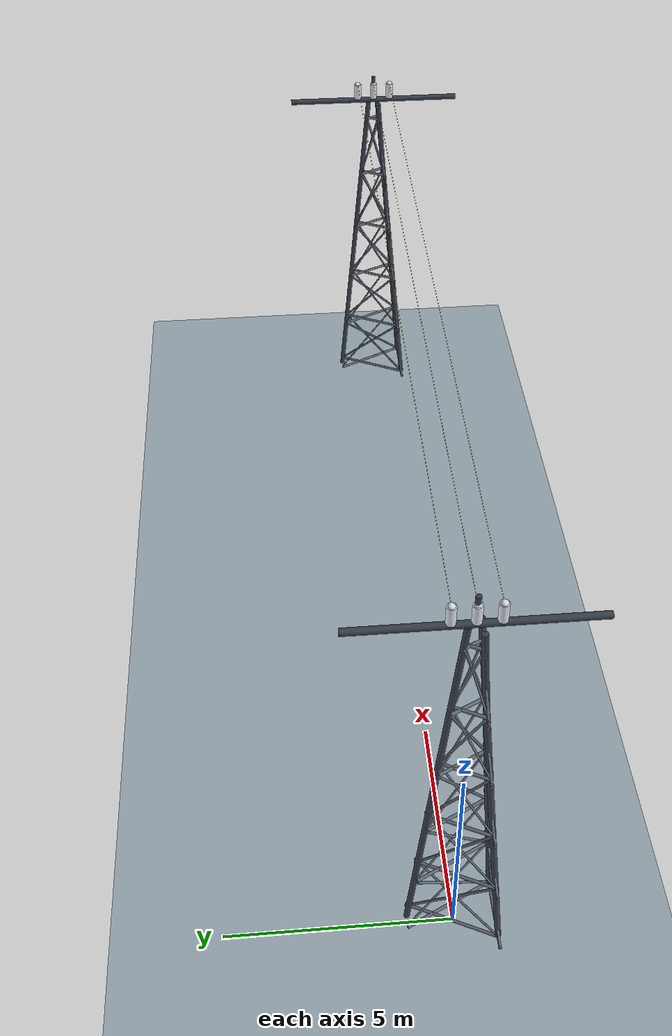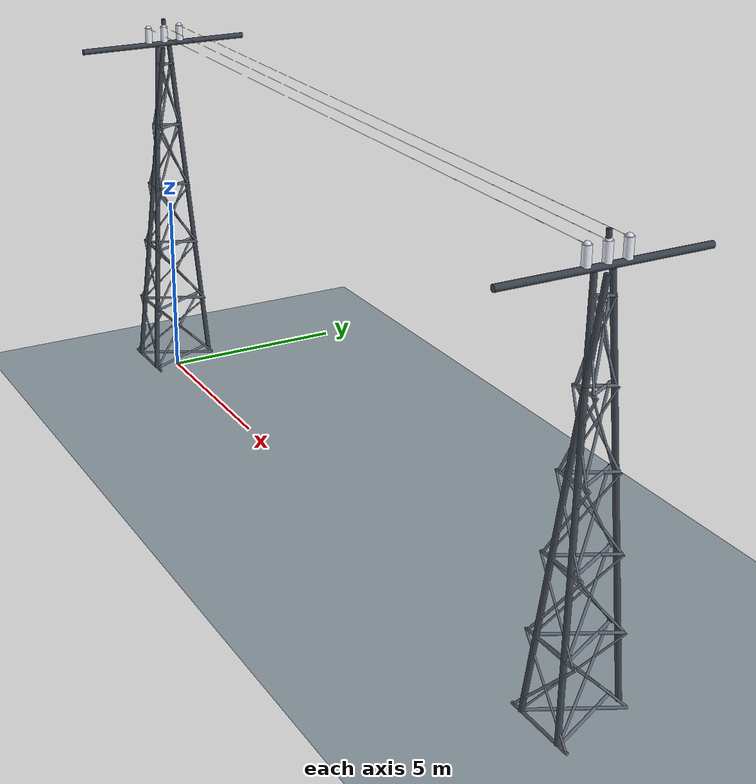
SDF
<?xml version='1.0' encoding='utf-8'?>
<sdf version="1.6">
  <world name="inspection_line_world">
    <model name="light_ground">
      <static>true</static>
      <link name="link">
        <visual name="visual">
          <geometry>
            <plane>
              <normal>0 0 1</normal>
              <size>160 80</size>
            </plane>
          </geometry>
          <material>
            <ambient>0.55 0.60 0.64 1</ambient>
            <diffuse>0.62 0.68 0.72 1</diffuse>
          </material>
        </visual>
        <collision name="collision">
          <geometry>
            <plane>
              <normal>0 0 1</normal>
              <size>160 80</size>
            </plane>
          </geometry>
        </collision>
      </link>
    </model>
    <gravity>0 0 -9.81</gravity>
    <scene>
      <ambient>0.45 0.45 0.45 1</ambient>
      <background>0.72 0.78 0.86 1</background>
      <shadows>true</shadows>
    </scene>
    <physics type="ode">
      <max_step_size>0.001</max_step_size>
      <real_time_update_rate>1000</real_time_update_rate>
    </physics>
    <include>
      <uri>model://sun</uri>
    </include>
    <model name="inspection_scene">
      <static>true</static>
      <link name="scene_link">
        <inertial>
          <mass>1</mass>
          <inertia>
            <ixx>1</ixx>
            <iyy>1</iyy>
            <izz>1</izz>
            <ixy>0</ixy>
            <ixz>0</ixz>
            <iyz>0</iyz>
          </inertia>
        </inertial>
        <visual name="conductor_0">
          <pose>10.000000 -0.450000 10.080000 0.000000 1.570796 0.000000</pose>
          <geometry>
            <cylinder>
              <radius>0.003</radius>
              <length>20.0</length>
            </cylinder>
          </geometry>
          <material>
            <ambient>0.780000 0.640000 0.200000 1.000000</ambient>
            <diffuse>0.780000 0.640000 0.200000 1.000000</diffuse>
            <specular>0.18 0.18 0.18 1</specular>
          </material>
        </visual>
        <visual name="conductor_1">
          <pose>10.000000 0.000000 10.080000 0.000000 1.570796 0.000000</pose>
          <geometry>
            <cylinder>
              <radius>0.003</radius>
              <length>20.0</length>
            </cylinder>
          </geometry>
          <material>
            <ambient>0.780000 0.640000 0.200000 1.000000</ambient>
            <diffuse>0.780000 0.640000 0.200000 1.000000</diffuse>
            <specular>0.18 0.18 0.18 1</specular>
          </material>
        </visual>
        <visual name="conductor_2">
          <pose>10.000000 0.450000 10.080000 0.000000 1.570796 0.000000</pose>
          <geometry>
            <cylinder>
              <radius>0.003</radius>
              <length>20.0</length>
            </cylinder>
          </geometry>
          <material>
            <ambient>0.780000 0.640000 0.200000 1.000000</ambient>
            <diffuse>0.780000 0.640000 0.200000 1.000000</diffuse>
            <specular>0.18 0.18 0.18 1</specular>
          </material>
        </visual>
        <visual name="tower_0_leg_0">
          <pose>-0.210848 -0.497749 4.925000 0.000000 0.117955 0.760403</pose>
          <geometry>
            <cylinder>
              <radius>0.065000</radius>
              <length>9.314725</length>
            </cylinder>
          </geometry>
          <material>
            <ambient>0.220000 0.250000 0.290000 1.000000</ambient>
            <diffuse>0.220000 0.250000 0.290000 1.000000</diffuse>
            <specular>0.18 0.18 0.18 1</specular>
          </material>
        </visual>
        <visual name="tower_0_leg_1">
          <pose>0.210848 -0.497749 4.925000 0.000000 0.117955 2.381189</pose>
          <geometry>
            <cylinder>
              <radius>0.065000</radius>
              <length>9.314725</length>
            </cylinder>
          </geometry>
          <material>
            <ambient>0.220000 0.250000 0.290000 1.000000</ambient>
            <diffuse>0.220000 0.250000 0.290000 1.000000</diffuse>
            <specular>0.18 0.18 0.18 1</specular>
          </material>
        </visual>
        <visual name="tower_0_leg_2">
          <pose>0.000000 0.580707 4.925000 0.000000 0.095001 -1.570796</pose>
          <geometry>
            <cylinder>
              <radius>0.065000</radius>
              <length>9.291899</length>
            </cylinder>
          </geometry>
          <material>
            <ambient>0.220000 0.250000 0.290000 1.000000</ambient>
            <diffuse>0.220000 0.250000 0.290000 1.000000</diffuse>
            <specular>0.18 0.18 0.18 1</specular>
          </material>
        </visual>
        <visual name="tower_0_ring_030_0">
          <pose>0.000000 -0.875497 0.300000 0.000000 1.570796 0.000000</pose>
          <geometry>
            <cylinder>
              <radius>0.035000</radius>
              <length>1.848482</length>
            </cylinder>
          </geometry>
          <material>
            <ambient>0.380000 0.410000 0.460000 1.000000</ambient>
            <diffuse>0.380000 0.410000 0.460000 1.000000</diffuse>
            <specular>0.18 0.18 0.18 1</specular>
          </material>
        </visual>
        <visual name="tower_0_ring_030_1">
          <pose>0.184848 0.072958 0.300000 0.000000 1.570796 2.024180</pose>
          <geometry>
            <cylinder>
              <radius>0.035000</radius>
              <length>2.110093</length>
            </cylinder>
          </geometry>
          <material>
            <ambient>0.380000 0.410000 0.460000 1.000000</ambient>
            <diffuse>0.380000 0.410000 0.460000 1.000000</diffuse>
            <specular>0.18 0.18 0.18 1</specular>
          </material>
        </visual>
        <visual name="tower_0_ring_030_2">
          <pose>-0.184848 0.072958 0.300000 0.000000 1.570796 -2.024180</pose>
          <geometry>
            <cylinder>
              <radius>0.035000</radius>
              <length>2.110093</length>
            </cylinder>
          </geometry>
          <material>
            <ambient>0.380000 0.410000 0.460000 1.000000</ambient>
            <diffuse>0.380000 0.410000 0.460000 1.000000</diffuse>
            <specular>0.18 0.18 0.18 1</specular>
          </material>
        </visual>
        <visual name="tower_0_ring_204_0">
          <pose>0.000000 -0.732565 2.050000 0.000000 1.570796 0.000000</pose>
          <geometry>
            <cylinder>
              <radius>0.035000</radius>
              <length>1.547958</length>
            </cylinder>
          </geometry>
          <material>
            <ambient>0.380000 0.410000 0.460000 1.000000</ambient>
            <diffuse>0.380000 0.410000 0.460000 1.000000</diffuse>
            <specular>0.18 0.18 0.18 1</specular>
          </material>
        </visual>
        <visual name="tower_0_ring_204_1">
          <pose>0.154796 0.061047 2.050000 0.000000 1.570796 2.024499</pose>
          <geometry>
            <cylinder>
              <radius>0.035000</radius>
              <length>1.765879</length>
            </cylinder>
          </geometry>
          <material>
            <ambient>0.380000 0.410000 0.460000 1.000000</ambient>
            <diffuse>0.380000 0.410000 0.460000 1.000000</diffuse>
            <specular>0.18 0.18 0.18 1</specular>
          </material>
        </visual>
        <visual name="tower_0_ring_204_2">
          <pose>-0.154796 0.061047 2.050000 0.000000 1.570796 -2.024499</pose>
          <geometry>
            <cylinder>
              <radius>0.035000</radius>
              <length>1.765879</length>
            </cylinder>
          </geometry>
          <material>
            <ambient>0.380000 0.410000 0.460000 1.000000</ambient>
            <diffuse>0.380000 0.410000 0.460000 1.000000</diffuse>
            <specular>0.18 0.18 0.18 1</specular>
          </material>
        </visual>
        <visual name="tower_0_ring_380_0">
          <pose>0.000000 -0.589634 3.800000 0.000000 1.570796 0.000000</pose>
          <geometry>
            <cylinder>
              <radius>0.035000</radius>
              <length>1.247435</length>
            </cylinder>
          </geometry>
          <material>
            <ambient>0.380000 0.410000 0.460000 1.000000</ambient>
            <diffuse>0.380000 0.410000 0.460000 1.000000</diffuse>
            <specular>0.18 0.18 0.18 1</specular>
          </material>
        </visual>
        <visual name="tower_0_ring_380_1">
          <pose>0.124744 0.049136 3.800000 0.000000 1.570796 2.024974</pose>
          <geometry>
            <cylinder>
              <radius>0.035000</radius>
              <length>1.421664</length>
            </cylinder>
          </geometry>
          <material>
            <ambient>0.380000 0.410000 0.460000 1.000000</ambient>
            <diffuse>0.380000 0.410000 0.460000 1.000000</diffuse>
            <specular>0.18 0.18 0.18 1</specular>
          </material>
        </visual>
        <visual name="tower_0_ring_380_2">
          <pose>-0.124744 0.049136 3.800000 0.000000 1.570796 -2.024974</pose>
          <geometry>
            <cylinder>
              <radius>0.035000</radius>
              <length>1.421664</length>
            </cylinder>
          </geometry>
          <material>
            <ambient>0.380000 0.410000 0.460000 1.000000</ambient>
            <diffuse>0.380000 0.410000 0.460000 1.000000</diffuse>
            <specular>0.18 0.18 0.18 1</specular>
          </material>
        </visual>
        <visual name="tower_0_ring_555_0">
          <pose>0.000000 -0.446702 5.550000 0.000000 1.570796 0.000000</pose>
          <geometry>
            <cylinder>
              <radius>0.035000</radius>
              <length>0.946911</length>
            </cylinder>
          </geometry>
          <material>
            <ambient>0.380000 0.410000 0.460000 1.000000</ambient>
            <diffuse>0.380000 0.410000 0.460000 1.000000</diffuse>
            <specular>0.18 0.18 0.18 1</specular>
          </material>
        </visual>
        <visual name="tower_0_ring_555_1">
          <pose>0.094691 0.037225 5.550000 0.000000 1.570796 2.025751</pose>
          <geometry>
            <cylinder>
              <radius>0.035000</radius>
              <length>1.077451</length>
            </cylinder>
          </geometry>
          <material>
            <ambient>0.380000 0.410000 0.460000 1.000000</ambient>
            <diffuse>0.380000 0.410000 0.460000 1.000000</diffuse>
            <specular>0.18 0.18 0.18 1</specular>
          </material>
        </visual>
        <visual name="tower_0_ring_555_2">
          <pose>-0.094691 0.037225 5.550000 0.000000 1.570796 -2.025751</pose>
          <geometry>
            <cylinder>
              <radius>0.035000</radius>
              <length>1.077451</length>
            </cylinder>
          </geometry>
          <material>
            <ambient>0.380000 0.410000 0.460000 1.000000</ambient>
            <diffuse>0.380000 0.410000 0.460000 1.000000</diffuse>
            <specular>0.18 0.18 0.18 1</specular>
          </material>
        </visual>
        <visual name="tower_0_ring_730_0">
          <pose>0.000000 -0.303770 7.300000 0.000000 1.570796 0.000000</pose>
          <geometry>
            <cylinder>
              <radius>0.035000</radius>
              <length>0.646387</length>
            </cylinder>
          </geometry>
          <material>
            <ambient>0.380000 0.410000 0.460000 1.000000</ambient>
            <diffuse>0.380000 0.410000 0.460000 1.000000</diffuse>
            <specular>0.18 0.18 0.18 1</specular>
          </material>
        </visual>
        <visual name="tower_0_ring_730_1">
          <pose>0.064639 0.025314 7.300000 0.000000 1.570796 2.027259</pose>
          <geometry>
            <cylinder>
              <radius>0.035000</radius>
              <length>0.733238</length>
            </cylinder>
          </geometry>
          <material>
            <ambient>0.380000 0.410000 0.460000 1.000000</ambient>
            <diffuse>0.380000 0.410000 0.460000 1.000000</diffuse>
            <specular>0.18 0.18 0.18 1</specular>
          </material>
        </visual>
        <visual name="tower_0_ring_730_2">
          <pose>-0.064639 0.025314 7.300000 0.000000 1.570796 -2.027259</pose>
          <geometry>
            <cylinder>
              <radius>0.035000</radius>
              <length>0.733238</length>
            </cylinder>
          </geometry>
          <material>
            <ambient>0.380000 0.410000 0.460000 1.000000</ambient>
            <diffuse>0.380000 0.410000 0.460000 1.000000</diffuse>
            <specular>0.18 0.18 0.18 1</specular>
          </material>
        </visual>
        <visual name="tower_0_ring_905_0">
          <pose>0.000000 -0.160838 9.050000 0.000000 1.570796 0.000000</pose>
          <geometry>
            <cylinder>
              <radius>0.035000</radius>
              <length>0.345864</length>
            </cylinder>
          </geometry>
          <material>
            <ambient>0.380000 0.410000 0.460000 1.000000</ambient>
            <diffuse>0.380000 0.410000 0.460000 1.000000</diffuse>
            <specular>0.18 0.18 0.18 1</specular>
          </material>
        </visual>
        <visual name="tower_0_ring_905_1">
          <pose>0.034586 0.013403 9.050000 0.000000 1.570796 2.031435</pose>
          <geometry>
            <cylinder>
              <radius>0.035000</radius>
              <length>0.389031</length>
            </cylinder>
          </geometry>
          <material>
            <ambient>0.380000 0.410000 0.460000 1.000000</ambient>
            <diffuse>0.380000 0.410000 0.460000 1.000000</diffuse>
            <specular>0.18 0.18 0.18 1</specular>
          </material>
        </visual>
        <visual name="tower_0_ring_905_2">
          <pose>-0.034586 0.013403 9.050000 0.000000 1.570796 -2.031435</pose>
          <geometry>
            <cylinder>
              <radius>0.035000</radius>
              <length>0.389031</length>
            </cylinder>
          </geometry>
          <material>
            <ambient>0.380000 0.410000 0.460000 1.000000</ambient>
            <diffuse>0.380000 0.410000 0.460000 1.000000</diffuse>
            <specular>0.18 0.18 0.18 1</specular>
          </material>
        </visual>
        <visual name="tower_0_diag_030_0">
          <pose>-0.030052 -0.804031 1.175000 0.000000 0.772147 0.083968</pose>
          <geometry>
            <cylinder>
              <radius>0.028000</radius>
              <length>2.442720</length>
            </cylinder>
          </geometry>
          <material>
            <ambient>0.380000 0.410000 0.460000 1.000000</ambient>
            <diffuse>0.380000 0.410000 0.460000 1.000000</diffuse>
            <specular>0.18 0.18 0.18 1</specular>
          </material>
        </visual>
        <visual name="tower_0_diag_back_030_0">
          <pose>0.030052 -0.804031 1.175000 0.000000 0.772147 3.057625</pose>
          <geometry>
            <cylinder>
              <radius>0.022000</radius>
              <length>2.442720</length>
            </cylinder>
          </geometry>
          <material>
            <ambient>0.380000 0.410000 0.460000 1.000000</ambient>
            <diffuse>0.380000 0.410000 0.460000 1.000000</diffuse>
            <specular>0.18 0.18 0.18 1</specular>
          </material>
        </visual>
        <visual name="tower_0_diag_030_1">
          <pose>0.184848 -0.010419 1.175000 0.000000 0.842333 2.061424</pose>
          <geometry>
            <cylinder>
              <radius>0.028000</radius>
              <length>2.628719</length>
            </cylinder>
          </geometry>
          <material>
            <ambient>0.380000 0.410000 0.460000 1.000000</ambient>
            <diffuse>0.380000 0.410000 0.460000 1.000000</diffuse>
            <specular>0.18 0.18 0.18 1</specular>
          </material>
        </visual>
        <visual name="tower_0_diag_back_030_1">
          <pose>0.154796 0.144424 1.175000 0.000000 0.830948 -1.155226</pose>
          <geometry>
            <cylinder>
              <radius>0.022000</radius>
              <length>2.595763</length>
            </cylinder>
          </geometry>
          <material>
            <ambient>0.380000 0.410000 0.460000 1.000000</ambient>
            <diffuse>0.380000 0.410000 0.460000 1.000000</diffuse>
            <specular>0.18 0.18 0.18 1</specular>
          </material>
        </visual>
        <visual name="tower_0_diag_030_2">
          <pose>-0.154796 0.144424 1.175000 0.000000 0.830948 -1.986367</pose>
          <geometry>
            <cylinder>
              <radius>0.028000</radius>
              <length>2.595763</length>
            </cylinder>
          </geometry>
          <material>
            <ambient>0.380000 0.410000 0.460000 1.000000</ambient>
            <diffuse>0.380000 0.410000 0.460000 1.000000</diffuse>
            <specular>0.18 0.18 0.18 1</specular>
          </material>
        </visual>
        <visual name="tower_0_diag_back_030_2">
          <pose>-0.184848 -0.010419 1.175000 0.000000 0.842333 1.080169</pose>
          <geometry>
            <cylinder>
              <radius>0.022000</radius>
              <length>2.628719</length>
            </cylinder>
          </geometry>
          <material>
            <ambient>0.380000 0.410000 0.460000 1.000000</ambient>
            <diffuse>0.380000 0.410000 0.460000 1.000000</diffuse>
            <specular>0.18 0.18 0.18 1</specular>
          </material>
        </visual>
        <visual name="tower_0_diag_204_0">
          <pose>-0.030052 -0.661099 2.925000 0.000000 0.676476 0.101908</pose>
          <geometry>
            <cylinder>
              <radius>0.028000</radius>
              <length>2.244211</length>
            </cylinder>
          </geometry>
          <material>
            <ambient>0.380000 0.410000 0.460000 1.000000</ambient>
            <diffuse>0.380000 0.410000 0.460000 1.000000</diffuse>
            <specular>0.18 0.18 0.18 1</specular>
          </material>
        </visual>
        <visual name="tower_0_diag_back_204_0">
          <pose>0.030052 -0.661099 2.925000 0.000000 0.676476 3.039684</pose>
          <geometry>
            <cylinder>
              <radius>0.022000</radius>
              <length>2.244211</length>
            </cylinder>
          </geometry>
          <material>
            <ambient>0.380000 0.410000 0.460000 1.000000</ambient>
            <diffuse>0.380000 0.410000 0.460000 1.000000</diffuse>
            <specular>0.18 0.18 0.18 1</specular>
          </material>
        </visual>
        <visual name="tower_0_diag_204_1">
          <pose>0.154796 -0.022330 2.925000 0.000000 0.746117 2.069696</pose>
          <geometry>
            <cylinder>
              <radius>0.028000</radius>
              <length>2.383124</length>
            </cylinder>
          </geometry>
          <material>
            <ambient>0.380000 0.410000 0.460000 1.000000</ambient>
            <diffuse>0.380000 0.410000 0.460000 1.000000</diffuse>
            <specular>0.18 0.18 0.18 1</specular>
          </material>
        </visual>
        <visual name="tower_0_diag_back_204_1">
          <pose>0.124744 0.132513 2.925000 0.000000 0.732251 -1.163138</pose>
          <geometry>
            <cylinder>
              <radius>0.022000</radius>
              <length>2.353191</length>
            </cylinder>
          </geometry>
          <material>
            <ambient>0.380000 0.410000 0.460000 1.000000</ambient>
            <diffuse>0.380000 0.410000 0.460000 1.000000</diffuse>
            <specular>0.18 0.18 0.18 1</specular>
          </material>
        </visual>
        <visual name="tower_0_diag_204_2">
          <pose>-0.124744 0.132513 2.925000 0.000000 0.732251 -1.978454</pose>
          <geometry>
            <cylinder>
              <radius>0.028000</radius>
              <length>2.353191</length>
            </cylinder>
          </geometry>
          <material>
            <ambient>0.380000 0.410000 0.460000 1.000000</ambient>
            <diffuse>0.380000 0.410000 0.460000 1.000000</diffuse>
            <specular>0.18 0.18 0.18 1</specular>
          </material>
        </visual>
        <visual name="tower_0_diag_back_204_2">
          <pose>-0.154796 -0.022330 2.925000 0.000000 0.746117 1.071896</pose>
          <geometry>
            <cylinder>
              <radius>0.022000</radius>
              <length>2.383124</length>
            </cylinder>
          </geometry>
          <material>
            <ambient>0.380000 0.410000 0.460000 1.000000</ambient>
            <diffuse>0.380000 0.410000 0.460000 1.000000</diffuse>
            <specular>0.18 0.18 0.18 1</specular>
          </material>
        </visual>
        <visual name="tower_0_diag_380_0">
          <pose>-0.030052 -0.518168 4.675000 0.000000 0.563798 0.129543</pose>
          <geometry>
            <cylinder>
              <radius>0.028000</radius>
              <length>2.070439</length>
            </cylinder>
          </geometry>
          <material>
            <ambient>0.380000 0.410000 0.460000 1.000000</ambient>
            <diffuse>0.380000 0.410000 0.460000 1.000000</diffuse>
            <specular>0.18 0.18 0.18 1</specular>
          </material>
        </visual>
        <visual name="tower_0_diag_back_380_0">
          <pose>0.030052 -0.518168 4.675000 0.000000 0.563798 3.012049</pose>
          <geometry>
            <cylinder>
              <radius>0.022000</radius>
              <length>2.070439</length>
            </cylinder>
          </geometry>
          <material>
            <ambient>0.380000 0.410000 0.460000 1.000000</ambient>
            <diffuse>0.380000 0.410000 0.460000 1.000000</diffuse>
            <specular>0.18 0.18 0.18 1</specular>
          </material>
        </visual>
        <visual name="tower_0_diag_380_1">
          <pose>0.124744 -0.034241 4.675000 0.000000 0.629241 2.082434</pose>
          <geometry>
            <cylinder>
              <radius>0.028000</radius>
              <length>2.164571</length>
            </cylinder>
          </geometry>
          <material>
            <ambient>0.380000 0.410000 0.460000 1.000000</ambient>
            <diffuse>0.380000 0.410000 0.460000 1.000000</diffuse>
            <specular>0.18 0.18 0.18 1</specular>
          </material>
        </visual>
        <visual name="tower_0_diag_back_380_1">
          <pose>0.094691 0.120602 4.675000 0.000000 0.612422 -1.175478</pose>
          <geometry>
            <cylinder>
              <radius>0.022000</radius>
              <length>2.138690</length>
            </cylinder>
          </geometry>
          <material>
            <ambient>0.380000 0.410000 0.460000 1.000000</ambient>
            <diffuse>0.380000 0.410000 0.460000 1.000000</diffuse>
            <specular>0.18 0.18 0.18 1</specular>
          </material>
        </visual>
        <visual name="tower_0_diag_380_2">
          <pose>-0.094691 0.120602 4.675000 0.000000 0.612422 -1.966115</pose>
          <geometry>
            <cylinder>
              <radius>0.028000</radius>
              <length>2.138690</length>
            </cylinder>
          </geometry>
          <material>
            <ambient>0.380000 0.410000 0.460000 1.000000</ambient>
            <diffuse>0.380000 0.410000 0.460000 1.000000</diffuse>
            <specular>0.18 0.18 0.18 1</specular>
          </material>
        </visual>
        <visual name="tower_0_diag_back_380_2">
          <pose>-0.124744 -0.034241 4.675000 0.000000 0.629241 1.059159</pose>
          <geometry>
            <cylinder>
              <radius>0.022000</radius>
              <length>2.164571</length>
            </cylinder>
          </geometry>
          <material>
            <ambient>0.380000 0.410000 0.460000 1.000000</ambient>
            <diffuse>0.380000 0.410000 0.460000 1.000000</diffuse>
            <specular>0.18 0.18 0.18 1</specular>
          </material>
        </visual>
        <visual name="tower_0_diag_555_0">
          <pose>-0.030052 -0.375236 6.425000 0.000000 0.433198 0.177528</pose>
          <geometry>
            <cylinder>
              <radius>0.028000</radius>
              <length>1.928103</length>
            </cylinder>
          </geometry>
          <material>
            <ambient>0.380000 0.410000 0.460000 1.000000</ambient>
            <diffuse>0.380000 0.410000 0.460000 1.000000</diffuse>
            <specular>0.18 0.18 0.18 1</specular>
          </material>
        </visual>
        <visual name="tower_0_diag_back_555_0">
          <pose>0.030052 -0.375236 6.425000 0.000000 0.433198 2.964065</pose>
          <geometry>
            <cylinder>
              <radius>0.022000</radius>
              <length>1.928103</length>
            </cylinder>
          </geometry>
          <material>
            <ambient>0.380000 0.410000 0.460000 1.000000</ambient>
            <diffuse>0.380000 0.410000 0.460000 1.000000</diffuse>
            <specular>0.18 0.18 0.18 1</specular>
          </material>
        </visual>
        <visual name="tower_0_diag_555_1">
          <pose>0.094691 -0.046152 6.425000 0.000000 0.488718 2.104577</pose>
          <geometry>
            <cylinder>
              <radius>0.028000</radius>
              <length>1.982024</length>
            </cylinder>
          </geometry>
          <material>
            <ambient>0.380000 0.410000 0.460000 1.000000</ambient>
            <diffuse>0.380000 0.410000 0.460000 1.000000</diffuse>
            <specular>0.18 0.18 0.18 1</specular>
          </material>
        </visual>
        <visual name="tower_0_diag_back_555_1">
          <pose>0.064639 0.108691 6.425000 0.000000 0.468652 -1.197390</pose>
          <geometry>
            <cylinder>
              <radius>0.022000</radius>
              <length>1.961492</length>
            </cylinder>
          </geometry>
          <material>
            <ambient>0.380000 0.410000 0.460000 1.000000</ambient>
            <diffuse>0.380000 0.410000 0.460000 1.000000</diffuse>
            <specular>0.18 0.18 0.18 1</specular>
          </material>
        </visual>
        <visual name="tower_0_diag_555_2">
          <pose>-0.064639 0.108691 6.425000 0.000000 0.468652 -1.944203</pose>
          <geometry>
            <cylinder>
              <radius>0.028000</radius>
              <length>1.961492</length>
            </cylinder>
          </geometry>
          <material>
            <ambient>0.380000 0.410000 0.460000 1.000000</ambient>
            <diffuse>0.380000 0.410000 0.460000 1.000000</diffuse>
            <specular>0.18 0.18 0.18 1</specular>
          </material>
        </visual>
        <visual name="tower_0_diag_back_555_2">
          <pose>-0.094691 -0.046152 6.425000 0.000000 0.488718 1.037015</pose>
          <geometry>
            <cylinder>
              <radius>0.022000</radius>
              <length>1.982024</length>
            </cylinder>
          </geometry>
          <material>
            <ambient>0.380000 0.410000 0.460000 1.000000</ambient>
            <diffuse>0.380000 0.410000 0.460000 1.000000</diffuse>
            <specular>0.18 0.18 0.18 1</specular>
          </material>
        </visual>
        <visual name="tower_0_diag_730_0">
          <pose>-0.030052 -0.232304 8.175000 0.000000 0.286892 0.280500</pose>
          <geometry>
            <cylinder>
              <radius>0.028000</radius>
              <length>1.824574</length>
            </cylinder>
          </geometry>
          <material>
            <ambient>0.380000 0.410000 0.460000 1.000000</ambient>
            <diffuse>0.380000 0.410000 0.460000 1.000000</diffuse>
            <specular>0.18 0.18 0.18 1</specular>
          </material>
        </visual>
        <visual name="tower_0_diag_back_730_0">
          <pose>0.030052 -0.232304 8.175000 0.000000 0.286892 2.861092</pose>
          <geometry>
            <cylinder>
              <radius>0.022000</radius>
              <length>1.824574</length>
            </cylinder>
          </geometry>
          <material>
            <ambient>0.380000 0.410000 0.460000 1.000000</ambient>
            <diffuse>0.380000 0.410000 0.460000 1.000000</diffuse>
            <specular>0.18 0.18 0.18 1</specular>
          </material>
        </visual>
        <visual name="tower_0_diag_730_1">
          <pose>0.064639 -0.058063 8.175000 0.000000 0.324235 2.152553</pose>
          <geometry>
            <cylinder>
              <radius>0.028000</radius>
              <length>1.846197</length>
            </cylinder>
          </geometry>
          <material>
            <ambient>0.380000 0.410000 0.460000 1.000000</ambient>
            <diffuse>0.380000 0.410000 0.460000 1.000000</diffuse>
            <specular>0.18 0.18 0.18 1</specular>
          </material>
        </visual>
        <visual name="tower_0_diag_back_730_1">
          <pose>0.034586 0.096780 8.175000 0.000000 0.301118 -1.246974</pose>
          <geometry>
            <cylinder>
              <radius>0.022000</radius>
              <length>1.832450</length>
            </cylinder>
          </geometry>
          <material>
            <ambient>0.380000 0.410000 0.460000 1.000000</ambient>
            <diffuse>0.380000 0.410000 0.460000 1.000000</diffuse>
            <specular>0.18 0.18 0.18 1</specular>
          </material>
        </visual>
        <visual name="tower_0_diag_730_2">
          <pose>-0.034586 0.096780 8.175000 0.000000 0.301118 -1.894618</pose>
          <geometry>
            <cylinder>
              <radius>0.028000</radius>
              <length>1.832450</length>
            </cylinder>
          </geometry>
          <material>
            <ambient>0.380000 0.410000 0.460000 1.000000</ambient>
            <diffuse>0.380000 0.410000 0.460000 1.000000</diffuse>
            <specular>0.18 0.18 0.18 1</specular>
          </material>
        </visual>
        <visual name="tower_0_diag_back_730_2">
          <pose>-0.064639 -0.058063 8.175000 0.000000 0.324235 0.989040</pose>
          <geometry>
            <cylinder>
              <radius>0.022000</radius>
              <length>1.846197</length>
            </cylinder>
          </geometry>
          <material>
            <ambient>0.380000 0.410000 0.460000 1.000000</ambient>
            <diffuse>0.380000 0.410000 0.460000 1.000000</diffuse>
            <specular>0.18 0.18 0.18 1</specular>
          </material>
        </visual>
        <visual name="tower_0_crossarm">
          <pose>0.000000 0.000000 9.620000 0.000000 1.570796 1.570796</pose>
          <geometry>
            <cylinder>
              <radius>0.075000</radius>
              <length>4.700000</length>
            </cylinder>
          </geometry>
          <material>
            <ambient>0.220000 0.250000 0.290000 1.000000</ambient>
            <diffuse>0.220000 0.250000 0.290000 1.000000</diffuse>
            <specular>0.18 0.18 0.18 1</specular>
          </material>
        </visual>
        <visual name="tower_0_top_mast">
          <pose>0.000000 0.000000 9.950000 0.000000 0.000000 0.000000</pose>
          <geometry>
            <cylinder>
              <radius>0.055000</radius>
              <length>0.700000</length>
            </cylinder>
          </geometry>
          <material>
            <ambient>0.220000 0.250000 0.290000 1.000000</ambient>
            <diffuse>0.220000 0.250000 0.290000 1.000000</diffuse>
            <specular>0.18 0.18 0.18 1</specular>
          </material>
        </visual>
        <visual name="tower_0_insulator_0">
          <pose>0.000000 -0.450000 9.880000 0.000000 0.000000 0.000000</pose>
          <geometry>
            <cylinder>
              <radius>0.095000</radius>
              <length>0.420000</length>
            </cylinder>
          </geometry>
          <material>
            <ambient>0.860000 0.880000 0.920000 1.000000</ambient>
            <diffuse>0.860000 0.880000 0.920000 1.000000</diffuse>
            <specular>0.18 0.18 0.18 1</specular>
          </material>
        </visual>
        <visual name="tower_0_cap_0">
          <pose>0.000000 -0.450000 10.080000 0.000000 0.000000 0.000000</pose>
          <geometry>
            <sphere>
              <radius>0.075000</radius>
            </sphere>
          </geometry>
          <material>
            <ambient>0.860000 0.880000 0.920000 1.000000</ambient>
            <diffuse>0.860000 0.880000 0.920000 1.000000</diffuse>
            <specular>0.18 0.18 0.18 1</specular>
          </material>
        </visual>
        <visual name="tower_0_insulator_1">
          <pose>0.000000 0.000000 9.880000 0.000000 0.000000 0.000000</pose>
          <geometry>
            <cylinder>
              <radius>0.095000</radius>
              <length>0.420000</length>
            </cylinder>
          </geometry>
          <material>
            <ambient>0.860000 0.880000 0.920000 1.000000</ambient>
            <diffuse>0.860000 0.880000 0.920000 1.000000</diffuse>
            <specular>0.18 0.18 0.18 1</specular>
          </material>
        </visual>
        <visual name="tower_0_cap_1">
          <pose>0.000000 0.000000 10.080000 0.000000 0.000000 0.000000</pose>
          <geometry>
            <sphere>
              <radius>0.075000</radius>
            </sphere>
          </geometry>
          <material>
            <ambient>0.860000 0.880000 0.920000 1.000000</ambient>
            <diffuse>0.860000 0.880000 0.920000 1.000000</diffuse>
            <specular>0.18 0.18 0.18 1</specular>
          </material>
        </visual>
        <visual name="tower_0_insulator_2">
          <pose>0.000000 0.450000 9.880000 0.000000 0.000000 0.000000</pose>
          <geometry>
            <cylinder>
              <radius>0.095000</radius>
              <length>0.420000</length>
            </cylinder>
          </geometry>
          <material>
            <ambient>0.860000 0.880000 0.920000 1.000000</ambient>
            <diffuse>0.860000 0.880000 0.920000 1.000000</diffuse>
            <specular>0.18 0.18 0.18 1</specular>
          </material>
        </visual>
        <visual name="tower_0_cap_2">
          <pose>0.000000 0.450000 10.080000 0.000000 0.000000 0.000000</pose>
          <geometry>
            <sphere>
              <radius>0.075000</radius>
            </sphere>
          </geometry>
          <material>
            <ambient>0.860000 0.880000 0.920000 1.000000</ambient>
            <diffuse>0.860000 0.880000 0.920000 1.000000</diffuse>
            <specular>0.18 0.18 0.18 1</specular>
          </material>
        </visual>
        <visual name="tower_50_leg_0">
          <pose>19.789152 -0.497749 4.925000 0.000000 0.117955 0.760403</pose>
          <geometry>
            <cylinder>
              <radius>0.065000</radius>
              <length>9.314725</length>
            </cylinder>
          </geometry>
          <material>
            <ambient>0.220000 0.250000 0.290000 1.000000</ambient>
            <diffuse>0.220000 0.250000 0.290000 1.000000</diffuse>
            <specular>0.18 0.18 0.18 1</specular>
          </material>
        </visual>
        <visual name="tower_50_leg_1">
          <pose>20.210848 -0.497749 4.925000 0.000000 0.117955 2.381189</pose>
          <geometry>
            <cylinder>
              <radius>0.065000</radius>
              <length>9.314725</length>
            </cylinder>
          </geometry>
          <material>
            <ambient>0.220000 0.250000 0.290000 1.000000</ambient>
            <diffuse>0.220000 0.250000 0.290000 1.000000</diffuse>
            <specular>0.18 0.18 0.18 1</specular>
          </material>
        </visual>
        <visual name="tower_50_leg_2">
          <pose>20.000000 0.580707 4.925000 0.000000 0.095001 -1.570796</pose>
          <geometry>
            <cylinder>
              <radius>0.065000</radius>
              <length>9.291899</length>
            </cylinder>
          </geometry>
          <material>
            <ambient>0.220000 0.250000 0.290000 1.000000</ambient>
            <diffuse>0.220000 0.250000 0.290000 1.000000</diffuse>
            <specular>0.18 0.18 0.18 1</specular>
          </material>
        </visual>
        <visual name="tower_50_ring_030_0">
          <pose>20.000000 -0.875497 0.300000 0.000000 1.570796 0.000000</pose>
          <geometry>
            <cylinder>
              <radius>0.035000</radius>
              <length>1.848482</length>
            </cylinder>
          </geometry>
          <material>
            <ambient>0.380000 0.410000 0.460000 1.000000</ambient>
            <diffuse>0.380000 0.410000 0.460000 1.000000</diffuse>
            <specular>0.18 0.18 0.18 1</specular>
          </material>
        </visual>
        <visual name="tower_50_ring_030_1">
          <pose>20.184848 0.072958 0.300000 0.000000 1.570796 2.024180</pose>
          <geometry>
            <cylinder>
              <radius>0.035000</radius>
              <length>2.110093</length>
            </cylinder>
          </geometry>
          <material>
            <ambient>0.380000 0.410000 0.460000 1.000000</ambient>
            <diffuse>0.380000 0.410000 0.460000 1.000000</diffuse>
            <specular>0.18 0.18 0.18 1</specular>
          </material>
        </visual>
        <visual name="tower_50_ring_030_2">
          <pose>19.815152 0.072958 0.300000 0.000000 1.570796 -2.024180</pose>
          <geometry>
            <cylinder>
              <radius>0.035000</radius>
              <length>2.110093</length>
            </cylinder>
          </geometry>
          <material>
            <ambient>0.380000 0.410000 0.460000 1.000000</ambient>
            <diffuse>0.380000 0.410000 0.460000 1.000000</diffuse>
            <specular>0.18 0.18 0.18 1</specular>
          </material>
        </visual>
        <visual name="tower_50_ring_204_0">
          <pose>20.000000 -0.732565 2.050000 0.000000 1.570796 0.000000</pose>
          <geometry>
            <cylinder>
              <radius>0.035000</radius>
              <length>1.547958</length>
            </cylinder>
          </geometry>
          <material>
            <ambient>0.380000 0.410000 0.460000 1.000000</ambient>
            <diffuse>0.380000 0.410000 0.460000 1.000000</diffuse>
            <specular>0.18 0.18 0.18 1</specular>
          </material>
        </visual>
        <visual name="tower_50_ring_204_1">
          <pose>20.154796 0.061047 2.050000 0.000000 1.570796 2.024499</pose>
          <geometry>
            <cylinder>
              <radius>0.035000</radius>
              <length>1.765879</length>
            </cylinder>
          </geometry>
          <material>
            <ambient>0.380000 0.410000 0.460000 1.000000</ambient>
            <diffuse>0.380000 0.410000 0.460000 1.000000</diffuse>
            <specular>0.18 0.18 0.18 1</specular>
          </material>
        </visual>
        <visual name="tower_50_ring_204_2">
          <pose>19.845204 0.061047 2.050000 0.000000 1.570796 -2.024499</pose>
          <geometry>
            <cylinder>
              <radius>0.035000</radius>
              <length>1.765879</length>
            </cylinder>
          </geometry>
          <material>
            <ambient>0.380000 0.410000 0.460000 1.000000</ambient>
            <diffuse>0.380000 0.410000 0.460000 1.000000</diffuse>
            <specular>0.18 0.18 0.18 1</specular>
          </material>
        </visual>
        <visual name="tower_50_ring_380_0">
          <pose>20.000000 -0.589634 3.800000 0.000000 1.570796 0.000000</pose>
          <geometry>
            <cylinder>
              <radius>0.035000</radius>
              <length>1.247435</length>
            </cylinder>
          </geometry>
          <material>
            <ambient>0.380000 0.410000 0.460000 1.000000</ambient>
            <diffuse>0.380000 0.410000 0.460000 1.000000</diffuse>
            <specular>0.18 0.18 0.18 1</specular>
          </material>
        </visual>
        <visual name="tower_50_ring_380_1">
          <pose>20.124744 0.049136 3.800000 0.000000 1.570796 2.024974</pose>
          <geometry>
            <cylinder>
              <radius>0.035000</radius>
              <length>1.421664</length>
            </cylinder>
          </geometry>
          <material>
            <ambient>0.380000 0.410000 0.460000 1.000000</ambient>
            <diffuse>0.380000 0.410000 0.460000 1.000000</diffuse>
            <specular>0.18 0.18 0.18 1</specular>
          </material>
        </visual>
        <visual name="tower_50_ring_380_2">
          <pose>19.875256 0.049136 3.800000 0.000000 1.570796 -2.024974</pose>
          <geometry>
            <cylinder>
              <radius>0.035000</radius>
              <length>1.421664</length>
            </cylinder>
          </geometry>
          <material>
            <ambient>0.380000 0.410000 0.460000 1.000000</ambient>
            <diffuse>0.380000 0.410000 0.460000 1.000000</diffuse>
            <specular>0.18 0.18 0.18 1</specular>
          </material>
        </visual>
        <visual name="tower_50_ring_555_0">
          <pose>20.000000 -0.446702 5.550000 0.000000 1.570796 0.000000</pose>
          <geometry>
            <cylinder>
              <radius>0.035000</radius>
              <length>0.946911</length>
            </cylinder>
          </geometry>
          <material>
            <ambient>0.380000 0.410000 0.460000 1.000000</ambient>
            <diffuse>0.380000 0.410000 0.460000 1.000000</diffuse>
            <specular>0.18 0.18 0.18 1</specular>
          </material>
        </visual>
        <visual name="tower_50_ring_555_1">
          <pose>20.094691 0.037225 5.550000 0.000000 1.570796 2.025751</pose>
          <geometry>
            <cylinder>
              <radius>0.035000</radius>
              <length>1.077451</length>
            </cylinder>
          </geometry>
          <material>
            <ambient>0.380000 0.410000 0.460000 1.000000</ambient>
            <diffuse>0.380000 0.410000 0.460000 1.000000</diffuse>
            <specular>0.18 0.18 0.18 1</specular>
          </material>
        </visual>
        <visual name="tower_50_ring_555_2">
          <pose>19.905309 0.037225 5.550000 0.000000 1.570796 -2.025751</pose>
          <geometry>
            <cylinder>
              <radius>0.035000</radius>
              <length>1.077451</length>
            </cylinder>
          </geometry>
          <material>
            <ambient>0.380000 0.410000 0.460000 1.000000</ambient>
            <diffuse>0.380000 0.410000 0.460000 1.000000</diffuse>
            <specular>0.18 0.18 0.18 1</specular>
          </material>
        </visual>
        <visual name="tower_50_ring_730_0">
          <pose>20.000000 -0.303770 7.300000 0.000000 1.570796 0.000000</pose>
          <geometry>
            <cylinder>
              <radius>0.035000</radius>
              <length>0.646387</length>
            </cylinder>
          </geometry>
          <material>
            <ambient>0.380000 0.410000 0.460000 1.000000</ambient>
            <diffuse>0.380000 0.410000 0.460000 1.000000</diffuse>
            <specular>0.18 0.18 0.18 1</specular>
          </material>
        </visual>
        <visual name="tower_50_ring_730_1">
          <pose>20.064639 0.025314 7.300000 0.000000 1.570796 2.027259</pose>
          <geometry>
            <cylinder>
              <radius>0.035000</radius>
              <length>0.733238</length>
            </cylinder>
          </geometry>
          <material>
            <ambient>0.380000 0.410000 0.460000 1.000000</ambient>
            <diffuse>0.380000 0.410000 0.460000 1.000000</diffuse>
            <specular>0.18 0.18 0.18 1</specular>
          </material>
        </visual>
        <visual name="tower_50_ring_730_2">
          <pose>19.935361 0.025314 7.300000 0.000000 1.570796 -2.027259</pose>
          <geometry>
            <cylinder>
              <radius>0.035000</radius>
              <length>0.733238</length>
            </cylinder>
          </geometry>
          <material>
            <ambient>0.380000 0.410000 0.460000 1.000000</ambient>
            <diffuse>0.380000 0.410000 0.460000 1.000000</diffuse>
            <specular>0.18 0.18 0.18 1</specular>
          </material>
        </visual>
        <visual name="tower_50_ring_905_0">
          <pose>20.000000 -0.160838 9.050000 0.000000 1.570796 0.000000</pose>
          <geometry>
            <cylinder>
              <radius>0.035000</radius>
              <length>0.345864</length>
            </cylinder>
          </geometry>
          <material>
            <ambient>0.380000 0.410000 0.460000 1.000000</ambient>
            <diffuse>0.380000 0.410000 0.460000 1.000000</diffuse>
            <specular>0.18 0.18 0.18 1</specular>
          </material>
        </visual>
        <visual name="tower_50_ring_905_1">
          <pose>20.034586 0.013403 9.050000 0.000000 1.570796 2.031435</pose>
          <geometry>
            <cylinder>
              <radius>0.035000</radius>
              <length>0.389031</length>
            </cylinder>
          </geometry>
          <material>
            <ambient>0.380000 0.410000 0.460000 1.000000</ambient>
            <diffuse>0.380000 0.410000 0.460000 1.000000</diffuse>
            <specular>0.18 0.18 0.18 1</specular>
          </material>
        </visual>
        <visual name="tower_50_ring_905_2">
          <pose>19.965414 0.013403 9.050000 0.000000 1.570796 -2.031435</pose>
          <geometry>
            <cylinder>
              <radius>0.035000</radius>
              <length>0.389031</length>
            </cylinder>
          </geometry>
          <material>
            <ambient>0.380000 0.410000 0.460000 1.000000</ambient>
            <diffuse>0.380000 0.410000 0.460000 1.000000</diffuse>
            <specular>0.18 0.18 0.18 1</specular>
          </material>
        </visual>
        <visual name="tower_50_diag_030_0">
          <pose>19.969948 -0.804031 1.175000 0.000000 0.772147 0.083968</pose>
          <geometry>
            <cylinder>
              <radius>0.028000</radius>
              <length>2.442720</length>
            </cylinder>
          </geometry>
          <material>
            <ambient>0.380000 0.410000 0.460000 1.000000</ambient>
            <diffuse>0.380000 0.410000 0.460000 1.000000</diffuse>
            <specular>0.18 0.18 0.18 1</specular>
          </material>
        </visual>
        <visual name="tower_50_diag_back_030_0">
          <pose>20.030052 -0.804031 1.175000 0.000000 0.772147 3.057625</pose>
          <geometry>
            <cylinder>
              <radius>0.022000</radius>
              <length>2.442720</length>
            </cylinder>
          </geometry>
          <material>
            <ambient>0.380000 0.410000 0.460000 1.000000</ambient>
            <diffuse>0.380000 0.410000 0.460000 1.000000</diffuse>
            <specular>0.18 0.18 0.18 1</specular>
          </material>
        </visual>
        <visual name="tower_50_diag_030_1">
          <pose>20.184848 -0.010419 1.175000 0.000000 0.842333 2.061424</pose>
          <geometry>
            <cylinder>
              <radius>0.028000</radius>
              <length>2.628719</length>
            </cylinder>
          </geometry>
          <material>
            <ambient>0.380000 0.410000 0.460000 1.000000</ambient>
            <diffuse>0.380000 0.410000 0.460000 1.000000</diffuse>
            <specular>0.18 0.18 0.18 1</specular>
          </material>
        </visual>
        <visual name="tower_50_diag_back_030_1">
          <pose>20.154796 0.144424 1.175000 0.000000 0.830948 -1.155226</pose>
          <geometry>
            <cylinder>
              <radius>0.022000</radius>
              <length>2.595763</length>
            </cylinder>
          </geometry>
          <material>
            <ambient>0.380000 0.410000 0.460000 1.000000</ambient>
            <diffuse>0.380000 0.410000 0.460000 1.000000</diffuse>
            <specular>0.18 0.18 0.18 1</specular>
          </material>
        </visual>
        <visual name="tower_50_diag_030_2">
          <pose>19.845204 0.144424 1.175000 0.000000 0.830948 -1.986367</pose>
          <geometry>
            <cylinder>
              <radius>0.028000</radius>
              <length>2.595763</length>
            </cylinder>
          </geometry>
          <material>
            <ambient>0.380000 0.410000 0.460000 1.000000</ambient>
            <diffuse>0.380000 0.410000 0.460000 1.000000</diffuse>
            <specular>0.18 0.18 0.18 1</specular>
          </material>
        </visual>
        <visual name="tower_50_diag_back_030_2">
          <pose>19.815152 -0.010419 1.175000 0.000000 0.842333 1.080169</pose>
          <geometry>
            <cylinder>
              <radius>0.022000</radius>
              <length>2.628719</length>
            </cylinder>
          </geometry>
          <material>
            <ambient>0.380000 0.410000 0.460000 1.000000</ambient>
            <diffuse>0.380000 0.410000 0.460000 1.000000</diffuse>
            <specular>0.18 0.18 0.18 1</specular>
          </material>
        </visual>
        <visual name="tower_50_diag_204_0">
          <pose>19.969948 -0.661099 2.925000 0.000000 0.676476 0.101908</pose>
          <geometry>
            <cylinder>
              <radius>0.028000</radius>
              <length>2.244211</length>
            </cylinder>
          </geometry>
          <material>
            <ambient>0.380000 0.410000 0.460000 1.000000</ambient>
            <diffuse>0.380000 0.410000 0.460000 1.000000</diffuse>
            <specular>0.18 0.18 0.18 1</specular>
          </material>
        </visual>
        <visual name="tower_50_diag_back_204_0">
          <pose>20.030052 -0.661099 2.925000 0.000000 0.676476 3.039684</pose>
          <geometry>
            <cylinder>
              <radius>0.022000</radius>
              <length>2.244211</length>
            </cylinder>
          </geometry>
          <material>
            <ambient>0.380000 0.410000 0.460000 1.000000</ambient>
            <diffuse>0.380000 0.410000 0.460000 1.000000</diffuse>
            <specular>0.18 0.18 0.18 1</specular>
          </material>
        </visual>
        <visual name="tower_50_diag_204_1">
          <pose>20.154796 -0.022330 2.925000 0.000000 0.746117 2.069696</pose>
          <geometry>
            <cylinder>
              <radius>0.028000</radius>
              <length>2.383124</length>
            </cylinder>
          </geometry>
          <material>
            <ambient>0.380000 0.410000 0.460000 1.000000</ambient>
            <diffuse>0.380000 0.410000 0.460000 1.000000</diffuse>
            <specular>0.18 0.18 0.18 1</specular>
          </material>
        </visual>
        <visual name="tower_50_diag_back_204_1">
          <pose>20.124744 0.132513 2.925000 0.000000 0.732251 -1.163138</pose>
          <geometry>
            <cylinder>
              <radius>0.022000</radius>
              <length>2.353191</length>
            </cylinder>
          </geometry>
          <material>
            <ambient>0.380000 0.410000 0.460000 1.000000</ambient>
            <diffuse>0.380000 0.410000 0.460000 1.000000</diffuse>
            <specular>0.18 0.18 0.18 1</specular>
          </material>
        </visual>
        <visual name="tower_50_diag_204_2">
          <pose>19.875256 0.132513 2.925000 0.000000 0.732251 -1.978454</pose>
          <geometry>
            <cylinder>
              <radius>0.028000</radius>
              <length>2.353191</length>
            </cylinder>
          </geometry>
          <material>
            <ambient>0.380000 0.410000 0.460000 1.000000</ambient>
            <diffuse>0.380000 0.410000 0.460000 1.000000</diffuse>
            <specular>0.18 0.18 0.18 1</specular>
          </material>
        </visual>
        <visual name="tower_50_diag_back_204_2">
          <pose>19.845204 -0.022330 2.925000 0.000000 0.746117 1.071896</pose>
          <geometry>
            <cylinder>
              <radius>0.022000</radius>
              <length>2.383124</length>
            </cylinder>
          </geometry>
          <material>
            <ambient>0.380000 0.410000 0.460000 1.000000</ambient>
            <diffuse>0.380000 0.410000 0.460000 1.000000</diffuse>
            <specular>0.18 0.18 0.18 1</specular>
          </material>
        </visual>
        <visual name="tower_50_diag_380_0">
          <pose>19.969948 -0.518168 4.675000 0.000000 0.563798 0.129543</pose>
          <geometry>
            <cylinder>
              <radius>0.028000</radius>
              <length>2.070439</length>
            </cylinder>
          </geometry>
          <material>
            <ambient>0.380000 0.410000 0.460000 1.000000</ambient>
            <diffuse>0.380000 0.410000 0.460000 1.000000</diffuse>
            <specular>0.18 0.18 0.18 1</specular>
          </material>
        </visual>
        <visual name="tower_50_diag_back_380_0">
          <pose>20.030052 -0.518168 4.675000 0.000000 0.563798 3.012049</pose>
          <geometry>
            <cylinder>
              <radius>0.022000</radius>
              <length>2.070439</length>
            </cylinder>
          </geometry>
          <material>
            <ambient>0.380000 0.410000 0.460000 1.000000</ambient>
            <diffuse>0.380000 0.410000 0.460000 1.000000</diffuse>
            <specular>0.18 0.18 0.18 1</specular>
          </material>
        </visual>
        <visual name="tower_50_diag_380_1">
          <pose>20.124744 -0.034241 4.675000 0.000000 0.629241 2.082434</pose>
          <geometry>
            <cylinder>
              <radius>0.028000</radius>
              <length>2.164571</length>
            </cylinder>
          </geometry>
          <material>
            <ambient>0.380000 0.410000 0.460000 1.000000</ambient>
            <diffuse>0.380000 0.410000 0.460000 1.000000</diffuse>
            <specular>0.18 0.18 0.18 1</specular>
          </material>
        </visual>
        <visual name="tower_50_diag_back_380_1">
          <pose>20.094691 0.120602 4.675000 0.000000 0.612422 -1.175478</pose>
          <geometry>
            <cylinder>
              <radius>0.022000</radius>
              <length>2.138690</length>
            </cylinder>
          </geometry>
          <material>
            <ambient>0.380000 0.410000 0.460000 1.000000</ambient>
            <diffuse>0.380000 0.410000 0.460000 1.000000</diffuse>
            <specular>0.18 0.18 0.18 1</specular>
          </material>
        </visual>
        <visual name="tower_50_diag_380_2">
          <pose>19.905309 0.120602 4.675000 0.000000 0.612422 -1.966115</pose>
          <geometry>
            <cylinder>
              <radius>0.028000</radius>
              <length>2.138690</length>
            </cylinder>
          </geometry>
          <material>
            <ambient>0.380000 0.410000 0.460000 1.000000</ambient>
            <diffuse>0.380000 0.410000 0.460000 1.000000</diffuse>
            <specular>0.18 0.18 0.18 1</specular>
          </material>
        </visual>
        <visual name="tower_50_diag_back_380_2">
          <pose>19.875256 -0.034241 4.675000 0.000000 0.629241 1.059159</pose>
          <geometry>
            <cylinder>
              <radius>0.022000</radius>
              <length>2.164571</length>
            </cylinder>
          </geometry>
          <material>
            <ambient>0.380000 0.410000 0.460000 1.000000</ambient>
            <diffuse>0.380000 0.410000 0.460000 1.000000</diffuse>
            <specular>0.18 0.18 0.18 1</specular>
          </material>
        </visual>
        <visual name="tower_50_diag_555_0">
          <pose>19.969948 -0.375236 6.425000 0.000000 0.433198 0.177528</pose>
          <geometry>
            <cylinder>
              <radius>0.028000</radius>
              <length>1.928103</length>
            </cylinder>
          </geometry>
          <material>
            <ambient>0.380000 0.410000 0.460000 1.000000</ambient>
            <diffuse>0.380000 0.410000 0.460000 1.000000</diffuse>
            <specular>0.18 0.18 0.18 1</specular>
          </material>
        </visual>
        <visual name="tower_50_diag_back_555_0">
          <pose>20.030052 -0.375236 6.425000 0.000000 0.433198 2.964065</pose>
          <geometry>
            <cylinder>
              <radius>0.022000</radius>
              <length>1.928103</length>
            </cylinder>
          </geometry>
          <material>
            <ambient>0.380000 0.410000 0.460000 1.000000</ambient>
            <diffuse>0.380000 0.410000 0.460000 1.000000</diffuse>
            <specular>0.18 0.18 0.18 1</specular>
          </material>
        </visual>
        <visual name="tower_50_diag_555_1">
          <pose>20.094691 -0.046152 6.425000 0.000000 0.488718 2.104577</pose>
          <geometry>
            <cylinder>
              <radius>0.028000</radius>
              <length>1.982024</length>
            </cylinder>
          </geometry>
          <material>
            <ambient>0.380000 0.410000 0.460000 1.000000</ambient>
            <diffuse>0.380000 0.410000 0.460000 1.000000</diffuse>
            <specular>0.18 0.18 0.18 1</specular>
          </material>
        </visual>
        <visual name="tower_50_diag_back_555_1">
          <pose>20.064639 0.108691 6.425000 0.000000 0.468652 -1.197390</pose>
          <geometry>
            <cylinder>
              <radius>0.022000</radius>
              <length>1.961492</length>
            </cylinder>
          </geometry>
          <material>
            <ambient>0.380000 0.410000 0.460000 1.000000</ambient>
            <diffuse>0.380000 0.410000 0.460000 1.000000</diffuse>
            <specular>0.18 0.18 0.18 1</specular>
          </material>
        </visual>
        <visual name="tower_50_diag_555_2">
          <pose>19.935361 0.108691 6.425000 0.000000 0.468652 -1.944203</pose>
          <geometry>
            <cylinder>
              <radius>0.028000</radius>
              <length>1.961492</length>
            </cylinder>
          </geometry>
          <material>
            <ambient>0.380000 0.410000 0.460000 1.000000</ambient>
            <diffuse>0.380000 0.410000 0.460000 1.000000</diffuse>
            <specular>0.18 0.18 0.18 1</specular>
          </material>
        </visual>
        <visual name="tower_50_diag_back_555_2">
          <pose>19.905309 -0.046152 6.425000 0.000000 0.488718 1.037015</pose>
          <geometry>
            <cylinder>
              <radius>0.022000</radius>
              <length>1.982024</length>
            </cylinder>
          </geometry>
          <material>
            <ambient>0.380000 0.410000 0.460000 1.000000</ambient>
            <diffuse>0.380000 0.410000 0.460000 1.000000</diffuse>
            <specular>0.18 0.18 0.18 1</specular>
          </material>
        </visual>
        <visual name="tower_50_diag_730_0">
          <pose>19.969948 -0.232304 8.175000 0.000000 0.286892 0.280500</pose>
          <geometry>
            <cylinder>
              <radius>0.028000</radius>
              <length>1.824574</length>
            </cylinder>
          </geometry>
          <material>
            <ambient>0.380000 0.410000 0.460000 1.000000</ambient>
            <diffuse>0.380000 0.410000 0.460000 1.000000</diffuse>
            <specular>0.18 0.18 0.18 1</specular>
          </material>
        </visual>
        <visual name="tower_50_diag_back_730_0">
          <pose>20.030052 -0.232304 8.175000 0.000000 0.286892 2.861092</pose>
          <geometry>
            <cylinder>
              <radius>0.022000</radius>
              <length>1.824574</length>
            </cylinder>
          </geometry>
          <material>
            <ambient>0.380000 0.410000 0.460000 1.000000</ambient>
            <diffuse>0.380000 0.410000 0.460000 1.000000</diffuse>
            <specular>0.18 0.18 0.18 1</specular>
          </material>
        </visual>
        <visual name="tower_50_diag_730_1">
          <pose>20.064639 -0.058063 8.175000 0.000000 0.324235 2.152553</pose>
          <geometry>
            <cylinder>
              <radius>0.028000</radius>
              <length>1.846197</length>
            </cylinder>
          </geometry>
          <material>
            <ambient>0.380000 0.410000 0.460000 1.000000</ambient>
            <diffuse>0.380000 0.410000 0.460000 1.000000</diffuse>
            <specular>0.18 0.18 0.18 1</specular>
          </material>
        </visual>
        <visual name="tower_50_diag_back_730_1">
          <pose>20.034586 0.096780 8.175000 0.000000 0.301118 -1.246974</pose>
          <geometry>
            <cylinder>
              <radius>0.022000</radius>
              <length>1.832450</length>
            </cylinder>
          </geometry>
          <material>
            <ambient>0.380000 0.410000 0.460000 1.000000</ambient>
            <diffuse>0.380000 0.410000 0.460000 1.000000</diffuse>
            <specular>0.18 0.18 0.18 1</specular>
          </material>
        </visual>
        <visual name="tower_50_diag_730_2">
          <pose>19.965414 0.096780 8.175000 0.000000 0.301118 -1.894618</pose>
          <geometry>
            <cylinder>
              <radius>0.028000</radius>
              <length>1.832450</length>
            </cylinder>
          </geometry>
          <material>
            <ambient>0.380000 0.410000 0.460000 1.000000</ambient>
            <diffuse>0.380000 0.410000 0.460000 1.000000</diffuse>
            <specular>0.18 0.18 0.18 1</specular>
          </material>
        </visual>
        <visual name="tower_50_diag_back_730_2">
          <pose>19.935361 -0.058063 8.175000 0.000000 0.324235 0.989040</pose>
          <geometry>
            <cylinder>
              <radius>0.022000</radius>
              <length>1.846197</length>
            </cylinder>
          </geometry>
          <material>
            <ambient>0.380000 0.410000 0.460000 1.000000</ambient>
            <diffuse>0.380000 0.410000 0.460000 1.000000</diffuse>
            <specular>0.18 0.18 0.18 1</specular>
          </material>
        </visual>
        <visual name="tower_50_crossarm">
          <pose>20.000000 0.000000 9.620000 0.000000 1.570796 1.570796</pose>
          <geometry>
            <cylinder>
              <radius>0.075000</radius>
              <length>4.700000</length>
            </cylinder>
          </geometry>
          <material>
            <ambient>0.220000 0.250000 0.290000 1.000000</ambient>
            <diffuse>0.220000 0.250000 0.290000 1.000000</diffuse>
            <specular>0.18 0.18 0.18 1</specular>
          </material>
        </visual>
        <visual name="tower_50_top_mast">
          <pose>20.000000 0.000000 9.950000 0.000000 0.000000 0.000000</pose>
          <geometry>
            <cylinder>
              <radius>0.055000</radius>
              <length>0.700000</length>
            </cylinder>
          </geometry>
          <material>
            <ambient>0.220000 0.250000 0.290000 1.000000</ambient>
            <diffuse>0.220000 0.250000 0.290000 1.000000</diffuse>
            <specular>0.18 0.18 0.18 1</specular>
          </material>
        </visual>
        <visual name="tower_50_insulator_0">
          <pose>20.000000 -0.450000 9.880000 0.000000 0.000000 0.000000</pose>
          <geometry>
            <cylinder>
              <radius>0.095000</radius>
              <length>0.420000</length>
            </cylinder>
          </geometry>
          <material>
            <ambient>0.860000 0.880000 0.920000 1.000000</ambient>
            <diffuse>0.860000 0.880000 0.920000 1.000000</diffuse>
            <specular>0.18 0.18 0.18 1</specular>
          </material>
        </visual>
        <visual name="tower_50_cap_0">
          <pose>20.000000 -0.450000 10.080000 0.000000 0.000000 0.000000</pose>
          <geometry>
            <sphere>
              <radius>0.075000</radius>
            </sphere>
          </geometry>
          <material>
            <ambient>0.860000 0.880000 0.920000 1.000000</ambient>
            <diffuse>0.860000 0.880000 0.920000 1.000000</diffuse>
            <specular>0.18 0.18 0.18 1</specular>
          </material>
        </visual>
        <visual name="tower_50_insulator_1">
          <pose>20.000000 0.000000 9.880000 0.000000 0.000000 0.000000</pose>
          <geometry>
            <cylinder>
              <radius>0.095000</radius>
              <length>0.420000</length>
            </cylinder>
          </geometry>
          <material>
            <ambient>0.860000 0.880000 0.920000 1.000000</ambient>
            <diffuse>0.860000 0.880000 0.920000 1.000000</diffuse>
            <specular>0.18 0.18 0.18 1</specular>
          </material>
        </visual>
        <visual name="tower_50_cap_1">
          <pose>20.000000 0.000000 10.080000 0.000000 0.000000 0.000000</pose>
          <geometry>
            <sphere>
              <radius>0.075000</radius>
            </sphere>
          </geometry>
          <material>
            <ambient>0.860000 0.880000 0.920000 1.000000</ambient>
            <diffuse>0.860000 0.880000 0.920000 1.000000</diffuse>
            <specular>0.18 0.18 0.18 1</specular>
          </material>
        </visual>
        <visual name="tower_50_insulator_2">
          <pose>20.000000 0.450000 9.880000 0.000000 0.000000 0.000000</pose>
          <geometry>
            <cylinder>
              <radius>0.095000</radius>
              <length>0.420000</length>
            </cylinder>
          </geometry>
          <material>
            <ambient>0.860000 0.880000 0.920000 1.000000</ambient>
            <diffuse>0.860000 0.880000 0.920000 1.000000</diffuse>
            <specular>0.18 0.18 0.18 1</specular>
          </material>
        </visual>
        <visual name="tower_50_cap_2">
          <pose>20.000000 0.450000 10.080000 0.000000 0.000000 0.000000</pose>
          <geometry>
            <sphere>
              <radius>0.075000</radius>
            </sphere>
          </geometry>
          <material>
            <ambient>0.860000 0.880000 0.920000 1.000000</ambient>
            <diffuse>0.860000 0.880000 0.920000 1.000000</diffuse>
            <specular>0.18 0.18 0.18 1</specular>
          </material>
        </visual>
      </link>
    </model>
  </world>
</sdf>
